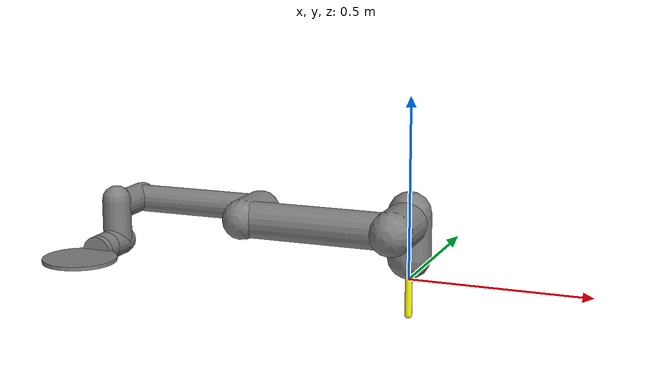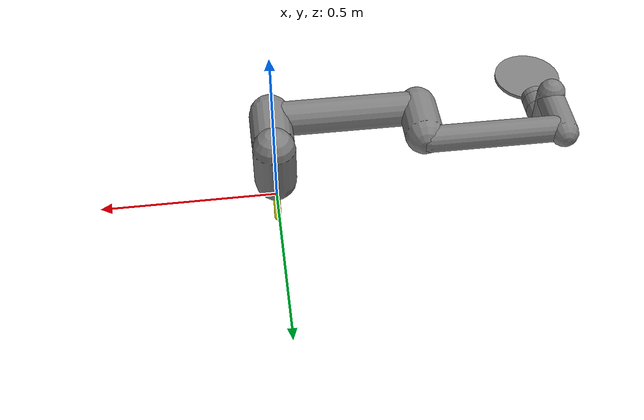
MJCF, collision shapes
<mujoco model="ur5e">
  <compiler angle="radian" autolimits="true" meshdir=".."/>

  <option integrator="implicitfast"/>

  <default>
    <default class="ur5e">
      <material specular="0.5" shininess="0.25"/>
      <joint axis="0 1 0" range="-6.28319 6.28319" armature="0.1"/>
      <general gaintype="fixed" biastype="affine" ctrlrange="-6.2831 6.2831" gainprm="2000" biasprm="0 -2000 -400"
        forcerange="-150 150"/>
      <default class="size3">
        <default class="size3_limited">
          <joint range="-3.1415 3.1415"/>
          <general ctrlrange="-3.1415 3.1415"/>
        </default>
      </default>
      <default class="size1">
        <general gainprm="500" biasprm="0 -500 -100" forcerange="-28 28"/>
      </default>
      <default class="visual">
        <geom type="mesh" contype="0" conaffinity="0" group="2"/>
      </default>
      <default class="collision">
        <geom type="capsule" group="3"/>
        <default class="eef_collision">
          <geom type="cylinder"/>
        </default>
      </default>
      <site size="0.001" rgba="0.5 0.5 0.5 0.3" group="4"/>
    </default>
  </default>

  <asset>
    <material class="ur5e" name="black" rgba="0.033 0.033 0.033 1"/>
    <material class="ur5e" name="jointgray" rgba="0.278 0.278 0.278 1"/>
    <material class="ur5e" name="linkgray" rgba="0.82 0.82 0.82 1"/>
    <material class="ur5e" name="urblue" rgba="0.49 0.678 0.8 1"/>

    <mesh name="base_0" file="ur5_assets/base_0.obj"/>
    <mesh name="base_1" file="ur5_assets/base_1.obj"/>
    <mesh name="shoulder_0" file="ur5_assets/shoulder_0.obj"/>
    <mesh name="shoulder_1" file="ur5_assets/shoulder_1.obj"/>
    <mesh name="shoulder_2" file="ur5_assets/shoulder_2.obj"/>
    <mesh name="upperarm_0" file="ur5_assets/upperarm_0.obj"/>
    <mesh name="upperarm_1" file="ur5_assets/upperarm_1.obj"/>
    <mesh name="upperarm_2" file="ur5_assets/upperarm_2.obj"/>
    <mesh name="upperarm_3" file="ur5_assets/upperarm_3.obj"/>
    <mesh name="forearm_0" file="ur5_assets/forearm_0.obj"/>
    <mesh name="forearm_1" file="ur5_assets/forearm_1.obj"/>
    <mesh name="forearm_2" file="ur5_assets/forearm_2.obj"/>
    <mesh name="forearm_3" file="ur5_assets/forearm_3.obj"/>
    <mesh name="wrist1_0" file="ur5_assets/wrist1_0.obj"/>
    <mesh name="wrist1_1" file="ur5_assets/wrist1_1.obj"/>
    <mesh name="wrist1_2" file="ur5_assets/wrist1_2.obj"/>
    <mesh name="wrist2_0" file="ur5_assets/wrist2_0.obj"/>
    <mesh name="wrist2_1" file="ur5_assets/wrist2_1.obj"/>
    <mesh name="wrist2_2" file="ur5_assets/wrist2_2.obj"/>
    <mesh name="wrist3" file="ur5_assets/wrist3.obj"/>
  </asset>

  <worldbody>
    <light name="spotlight" mode="targetbodycom" target="wrist_2_link" pos="0 -1 2"/>

    <body name="base" quat="0 0 0 -1" childclass="ur5e">
      <inertial mass="4.0" pos="0 0 0" diaginertia="0.00443333156 0.00443333156 0.0072"/>
      <geom mesh="base_0" material="black" class="visual"/>
      <geom mesh="base_1" material="jointgray" class="visual"/>
      <body name="shoulder_link" pos="0 0 0.163">
        <inertial mass="3.7" pos="0 0 0" diaginertia="0.0102675 0.0102675 0.00666"/>
        <joint name="shoulder_pan_joint" class="size3" axis="0 0 1"/>
        <geom mesh="shoulder_0" material="urblue" class="visual"/>
        <geom mesh="shoulder_1" material="black" class="visual"/>
        <geom mesh="shoulder_2" material="jointgray" class="visual"/>
        <geom class="collision" size="0.06 0.06" pos="0 0 -0.04"/>
        <body name="upper_arm_link" pos="0 0.138 0" quat="1 0 1 0">
          <inertial mass="8.393" pos="0 0 0.2125" diaginertia="0.133886 0.133886 0.0151074"/>
          <joint name="shoulder_lift_joint" class="size3"/>
          <geom mesh="upperarm_0" material="linkgray" class="visual"/>
          <geom mesh="upperarm_1" material="black" class="visual"/>
          <geom mesh="upperarm_2" material="jointgray" class="visual"/>
          <geom mesh="upperarm_3" material="urblue" class="visual"/>
          <geom class="collision" pos="0 -0.04 0" quat="1 1 0 0" size="0.06 0.06"/>
          <geom class="collision" size="0.05 0.2" pos="0 0 0.2"/>
          <body name="forearm_link" pos="0 -0.131 0.425">
            <inertial mass="2.275" pos="0 0 0.196" diaginertia="0.0311796 0.0311796 0.004095"/>
            <joint name="elbow_joint" class="size3_limited"/>
            <geom mesh="forearm_0" material="urblue" class="visual"/>
            <geom mesh="forearm_1" material="linkgray" class="visual"/>
            <geom mesh="forearm_2" material="black" class="visual"/>
            <geom mesh="forearm_3" material="jointgray" class="visual"/>
            <geom class="collision" pos="0 0.08 0" quat="1 1 0 0" size="0.055 0.06"/>
            <geom class="collision" size="0.038 0.19" pos="0 0 0.2"/>
            <body name="wrist_1_link" pos="0 0 0.392" quat="1 0 1 0">
              <inertial mass="1.219" pos="0 0.127 0" diaginertia="0.0025599 0.0025599 0.0021942"/>
              <joint name="wrist_1_joint" class="size1"/>
              <geom mesh="wrist1_0" material="black" class="visual"/>
              <geom mesh="wrist1_1" material="urblue" class="visual"/>
              <geom mesh="wrist1_2" material="jointgray" class="visual"/>
              <geom class="collision" pos="0 0.05 0" quat="1 1 0 0" size="0.04 0.07"/>
              <body name="wrist_2_link" pos="0 0.127 0">
                <inertial mass="1.219" pos="0 0 0.1" diaginertia="0.0025599 0.0025599 0.0021942"/>
                <joint name="wrist_2_joint" axis="0 0 1" class="size1"/>
                <geom mesh="wrist2_0" material="black" class="visual"/>
                <geom mesh="wrist2_1" material="urblue" class="visual"/>
                <geom mesh="wrist2_2" material="jointgray" class="visual"/>
                <geom class="collision" size="0.04 0.06" pos="0 0 0.04"/>
                <geom class="collision" pos="0 0.02 0.1" quat="1 1 0 0" size="0.04 0.04"/>
                <body name="wrist_3_link" pos="0 0 0.1">
                  <inertial mass="0.1889" pos="0 0.0771683 0" quat="1 0 0 1"
                    diaginertia="0.000132134 9.90863e-05 9.90863e-05"/>
                  <joint name="wrist_3_joint" class="size1"/>
                  <geom material="linkgray" mesh="wrist3" class="visual"/>
                  <geom class="eef_collision" pos="0 0.08 0" quat="1 1 0 0" size="0.04 0.02"/>
                  <site name="attachment_site" type="sphere" size="0.01" pos="0 0.1 0" quat="-1 1 0 0" rgba="0.5 0.5 0.5 1"/>
                  <body name="grasped_body" pos="0 0.1 0" quat="-1 1 0 0">
                    <site name="center_of_plate" size="0.01" pos="0 0.005 0.105" euler="0 0 0" rgba="1 0.0 0.0 1" />
                    <geom type="cylinder" pos="0 0.0 0.105" euler="1.5707 0 0" size="0.1 0.005" group="2" rgba="0.5 0.5 0.5 1"/>
                    <geom type="cylinder" pos="0 0 0.01" euler="0 0 0" size="0.04 0.01" group="2" rgba="0.5 0.5 0.5 1"/>
                    <!-- x= towards the base y = up from groundplane z = out of ee-->
                  </body>
                </body>
              </body>
            </body>
          </body>
        </body>
      </body>
    </body>

    <body name="stick" pos="0.0 0.0 0.0" euler="0 0 0">
      <joint name="obj_joint" type="free" />
      <geom type="capsule" size="0.01 0.1" rgba="1 1 0 1" />
      <site name="end1" pos="0.0 0.0 -0.1" size="0.02" rgba="1 0.0 0.0 1" group="4" />
      <site name="end2" pos="0.0 0.0 0.1" size="0.02" rgba="1 0.0 0.0 1" group="4"/>
    </body>
  </worldbody>

  <contact>
    <exclude body1="stick" body2="base"/>
    <exclude body1="stick" body2="shoulder_link"/>
    <exclude body1="stick" body2="upper_arm_link"/>
    <exclude body1="stick" body2="forearm_link"/>
    <exclude body1="stick" body2="wrist_1_link"/>
    <exclude body1="stick" body2="wrist_2_link"/>
    <exclude body1="stick" body2="wrist_3_link"/>
  </contact>

  <actuator>
    <general class="size3" name="shoulder_pan" joint="shoulder_pan_joint"/>
    <general class="size3" name="shoulder_lift" joint="shoulder_lift_joint"/>
    <general class="size3_limited" name="elbow" joint="elbow_joint"/>
    <general class="size1" name="wrist_1" joint="wrist_1_joint"/>
    <general class="size1" name="wrist_2" joint="wrist_2_joint"/>
    <general class="size1" name="wrist_3" joint="wrist_3_joint"/>
  </actuator>

  <keyframe>
    <key name="home"
    qpos="
    -1.5708 -0.7854 1.5708 -0.7854 1.5708 0
    -0.13399639  0.77864685  0.17234655
    0 0 0 0"
    qvel="
    0 0 0
    0 0 0
    0 0 0"
    ctrl="-1.5708 -0.7854 1.5708 -0.7854 1.5708 0"/>
  </keyframe>
</mujoco>
